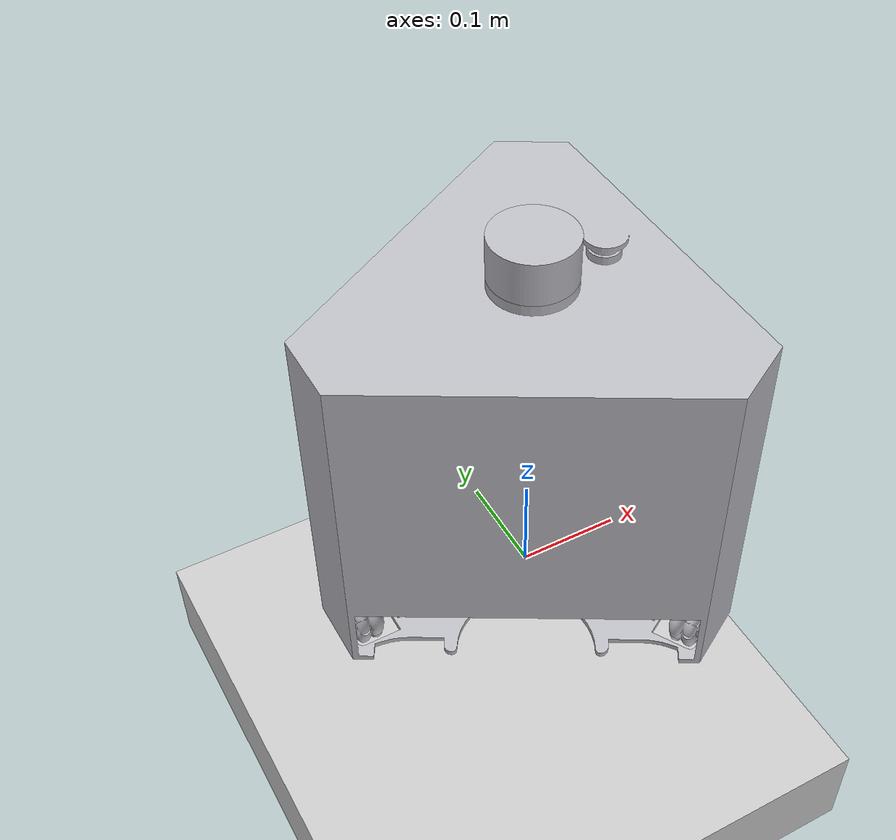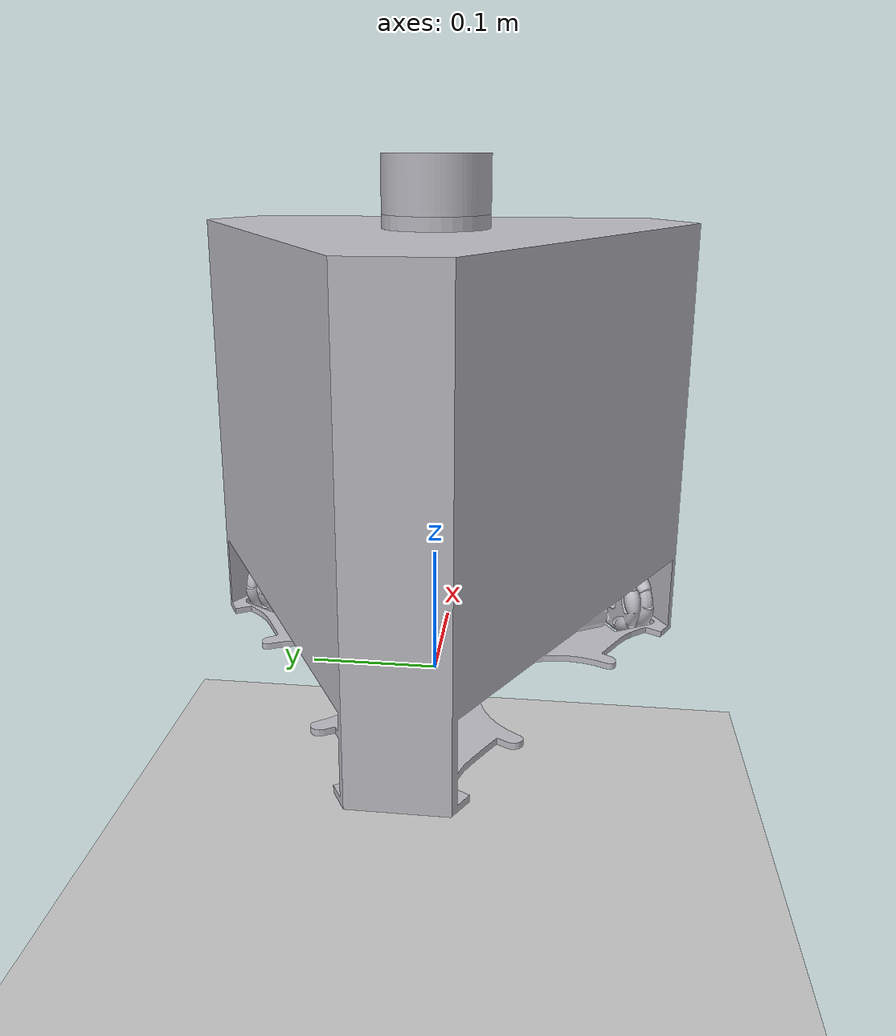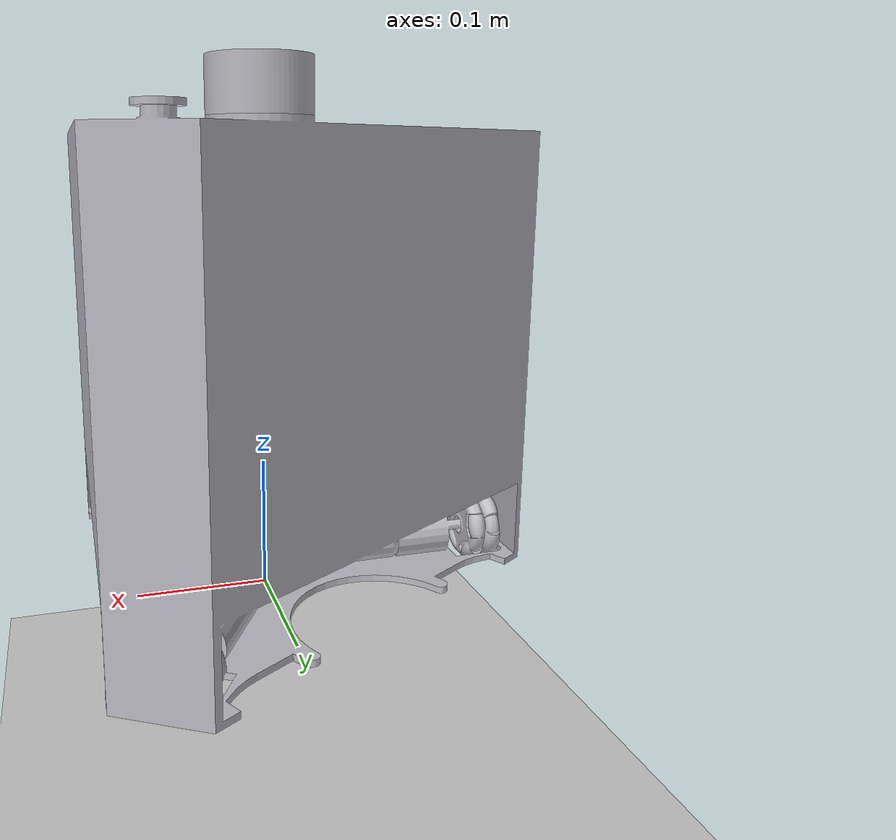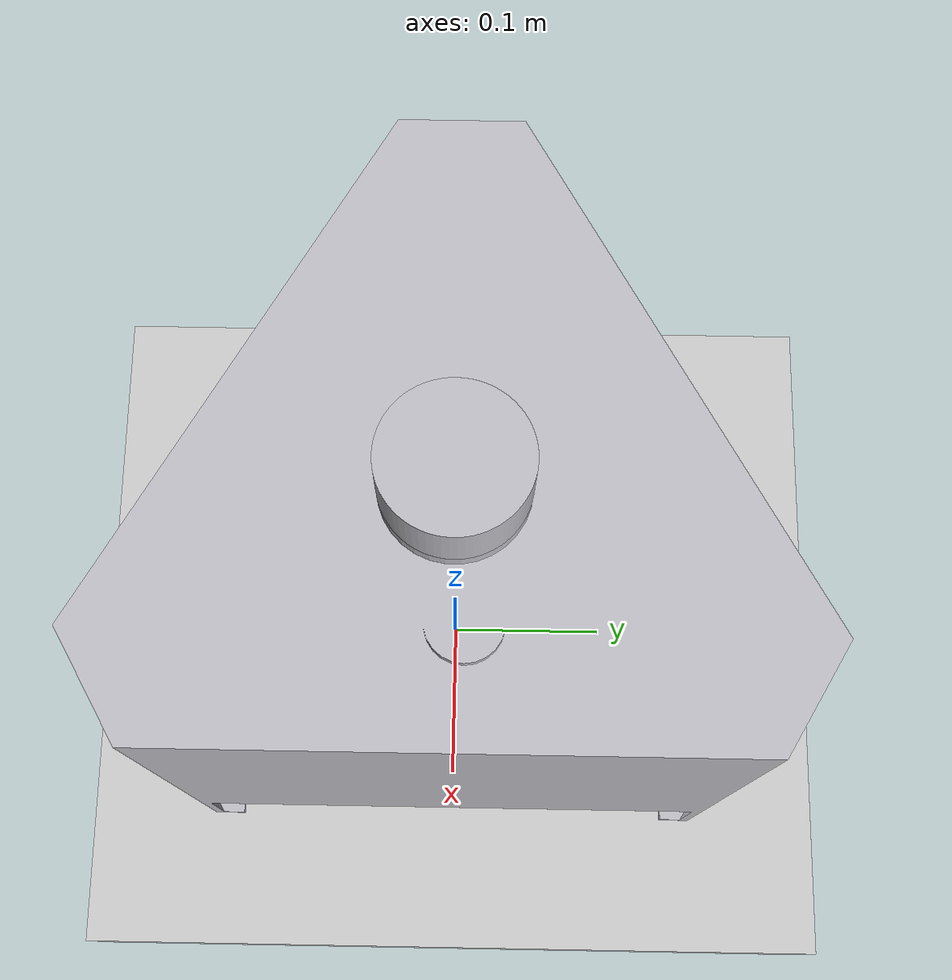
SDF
<?xml version="1.0" ?>

<sdf version='1.6'>
  <world name="farm_on_mars">
    <physics name="1ms" type="ignored">
      <max_step_size>0.001</max_step_size>
      <real_time_factor>1.0</real_time_factor>
    </physics>

    <model name="ground_plane">
      <static>true</static>
      <link name="link">
        <pose>0 0 -0.2 0 0 0</pose>
        <collision name="collision">
          <geometry>
            <box>
              <size>2 2 0.1</size>
            </box>
          </geometry>
        </collision>
        <visual name="visual">
          <geometry>
            <box>
              <size>2 2 0.1</size>
            </box>
          </geometry>
          <material>
            <ambient>0.8 0.8 0.8 1</ambient>
            <diffuse>0.8 0.8 0.8 1</diffuse>
            <specular>0.8 0.8 0.8 1</specular>
          </material>
        </visual>
      </link>
    </model>

    <model name="energybot1">
      <link name="base_link">
        <inertial>
          <pose>4.947386574344437e-05 3.69727636149967e-06 0.2063206729832077 0 0 0</pose>
          <mass>184.42831079049344</mass>
          <inertia>
            <ixx>2.663181</ixx>
            <ixy>4.9e-05</ixy>
            <ixz>-0.001242</ixz>
            <iyy>2.663734</iyy>
            <iyz>-0.000104</iyz>
            <izz>2.718376</izz>
          </inertia>
        </inertial>
        <visual name="base_link_visual1">
          <pose>0 0 0 0 0 0</pose>
          <geometry>
            <mesh>
              <uri>model://home/sees/CommLineProg/work/catkin2_ws/src/tribot2023urdf2/meshes/base_link.stl</uri>
              <scale>0.001 0.001 0.001</scale>
            </mesh>
          </geometry>
          <material>
            <script>
              <name>Gazebo/Silver</name>
              <uri>file://media/materials/scripts/gazebo.material</uri>
            </script>
          </material>
        </visual>
        <collision name="base_link_collision1">
          <pose>0 0 0 0 0 0</pose>
          <geometry>
            <mesh>
              <uri>model://home/sees/CommLineProg/work/catkin2_ws/src/tribot2023urdf2/meshes/base_link.stl</uri>
              <scale>0.001 0.001 0.001</scale>
            </mesh>
          </geometry>
          <surface>
            <contact>
              <ode/>
            </contact>
            <friction>
              <ode>
                <mu>0.2</mu>
                <mu2>0.2</mu2>
              </ode>
            </friction>
          </surface>
        </collision>
        <self_collide>true</self_collide>
        <gravity>true</gravity>
      </link>
      <link name="wheel_1_1">
        <inertial>
          <pose>-5.672276000806553e-05 -1.0146853210952665e-08 5.150149574167928e-09 0 0 0</pose>
          <mass>0.3928101364288651</mass>
          <inertia>
            <ixx>0.000159</ixx>
            <ixy>-0.0</ixy>
            <ixz>-0.0</ixz>
            <iyy>0.000101</iyy>
            <iyz>-0.0</iyz>
            <izz>0.000101</izz>
          </inertia>
        </inertial>
        <visual name="wheel_1_1_visual1">
          <pose>0 0 0 0 0 0</pose>
          <geometry>
            <mesh>
              <uri>model://home/sees/CommLineProg/work/catkin2_ws/src/tribot2023urdf2/meshes/wheel_1_1.stl</uri>
              <scale>0.001 0.001 0.001</scale>
            </mesh>
          </geometry>
          <material>
            <script>
              <name>Gazebo/Silver</name>
              <uri>file://media/materials/scripts/gazebo.material</uri>
            </script>
          </material>
        </visual>
        <collision name="wheel_1_1_collision1">
          <pose>0 0 0 0 0 0</pose>
          <geometry>
            <mesh>
              <uri>model://home/sees/CommLineProg/work/catkin2_ws/src/tribot2023urdf2/meshes/wheel_1_1.stl</uri>
              <scale>0.001 0.001 0.001</scale>
            </mesh>
          </geometry>
          <surface>
            <contact>
              <ode/>
            </contact>
            <friction>
              <ode>
                <mu>0.2</mu>
                <mu2>0.2</mu2>
              </ode>
            </friction>
          </surface>
        </collision>
        <self_collide>true</self_collide>
      </link>
      <link name="wheel_2_1">
        <inertial>
          <pose>2.8338520443177417e-05 -4.9510160979343576e-05 6.468955225658046e-09 0 0 0</pose>
          <mass>0.3928101364288651</mass>
          <inertia>
            <ixx>0.000115</ixx>
            <ixy>-2.5e-05</ixy>
            <ixz>-0.0</ixz>
            <iyy>0.000145</iyy>
            <iyz>0.0</iyz>
            <izz>0.000101</izz>
          </inertia>
        </inertial>
        <visual name="wheel_2_1_visual1">
          <pose>0 0 0 0 0 0</pose>
          <geometry>
            <mesh>
              <uri>model://home/sees/CommLineProg/work/catkin2_ws/src/tribot2023urdf2/meshes/wheel_2_1.stl</uri>
              <scale>0.001 0.001 0.001</scale>
            </mesh>
          </geometry>
          <material>
            <script>
              <name>Gazebo/Silver</name>
              <uri>file://media/materials/scripts/gazebo.material</uri>
            </script>
          </material>
        </visual>
        <collision name="wheel_2_1_collision1">
          <pose>0 0 0 0 0 0</pose>
          <geometry>
            <mesh>
              <uri>model://home/sees/CommLineProg/work/catkin2_ws/src/tribot2023urdf2/meshes/wheel_2_1.stl</uri>
              <scale>0.001 0.001 0.001</scale>
            </mesh>
          </geometry>
          <surface>
            <contact>
              <ode/>
            </contact>
            <friction>
              <ode>
                <mu>0.2</mu>
                <mu2>0.2</mu2>
              </ode>
            </friction>
          </surface>
        </collision>
        <self_collide>true</self_collide>
      </link>
      <link name="wheel_3_1">
        <inertial>
          <pose>2.8375160984195347e-05 4.951714439502264e-05 -2.434836562231757e-08 0 0 0</pose>
          <mass>0.3928101364288651</mass>
          <inertia>
            <ixx>0.000115</ixx>
            <ixy>-2.5e-05</ixy>
            <ixz>0.0</ixz>
            <iyy>0.000145</iyy>
            <iyz>-0.0</iyz>
            <izz>0.000101</izz>
          </inertia>
        </inertial>
        <visual name="wheel_3_1_visual1">
          <pose>0 0 0 0 0 0</pose>
          <geometry>
            <mesh>
              <uri>model://home/sees/CommLineProg/work/catkin2_ws/src/tribot2023urdf2/meshes/wheel_3_1.stl</uri>
              <scale>0.001 0.001 0.001</scale>
            </mesh>
          </geometry>
          <material>
            <script>
              <name>Gazebo/Silver</name>
              <uri>file://media/materials/scripts/gazebo.material</uri>
            </script>
          </material>
        </visual>
        <collision name="wheel_3_1_collision1">
          <pose>0 0 0 0 0 0</pose>
          <geometry>
            <mesh>
              <uri>model://home/sees/CommLineProg/work/catkin2_ws/src/tribot2023urdf2/meshes/wheel_3_1.stl</uri>
              <scale>0.001 0.001 0.001</scale>
            </mesh>
          </geometry>
          <surface>
            <contact>
              <ode/>
            </contact>
            <friction>
              <ode>
                <mu>0.2</mu>
                <mu2>0.2</mu2>
              </ode>
            </friction>
          </surface>
        </collision>
        <self_collide>true</self_collide>
      </link>
      <link name="lidar_2_1">
        <inertial>
          <pose>-2.320379200916381e-16 6.381042802520046e-17 0.020507000000000053 0 0 0</pose>
          <mass>1.538441088874157</mass>
          <inertia>
            <ixx>0.000801</ixx>
            <ixy>-0.0</ixy>
            <ixz>-0.0</ixz>
            <iyy>0.000801</iyy>
            <iyz>0.0</iyz>
            <izz>0.00117</izz>
          </inertia>
        </inertial>
        <visual name="lidar_2_1_visual1">
          <pose>0 0 0 0 0 0</pose>
          <geometry>
            <mesh>
              <uri>model://home/sees/CommLineProg/work/catkin2_ws/src/tribot2023urdf2/meshes/lidar_2_1.stl</uri>
              <scale>0.001 0.001 0.001</scale>
            </mesh>
          </geometry>
          <material>
            <script>
              <name>Gazebo/Silver</name>
              <uri>file://media/materials/scripts/gazebo.material</uri>
            </script>
          </material>
        </visual>
        <collision name="lidar_2_1_collision1">
          <pose>0 0 0 0 0 0</pose>
          <geometry>
            <mesh>
              <uri>model://home/sees/CommLineProg/work/catkin2_ws/src/tribot2023urdf2/meshes/lidar_2_1.stl</uri>
              <scale>0.001 0.001 0.001</scale>
            </mesh>
          </geometry>
          <surface>
            <contact>
              <ode/>
            </contact>
            <friction>
              <ode>
                <mu>0.2</mu>
                <mu2>0.2</mu2>
              </ode>
            </friction>
          </surface>
        </collision>
        <self_collide>true</self_collide>
      </link>

      <joint name="Rev1" type="revolute">
        <pose>-0.17874 0.0 0.029 0 0 0</pose>
        <parent>base_link</parent>
        <child>wheel_1_1</child>
        <axis>
          <xyz>-1.0 0.0 -0.0</xyz>
        </axis>
      </joint>
      <joint name="Rev2" type="revolute">
        <pose>0.08937 -0.154793 0.029 0 0 0</pose>
        <parent>base_link</parent>
        <child>wheel_2_1</child>
        <axis>
          <xyz>0.5 -0.866025 0.0</xyz>
        </axis>
      </joint>
      <joint name="Rev3" type="revolute">
        <pose>0.08937 0.154793 0.029 0 0 0</pose>
        <parent>base_link</parent>
        <child>wheel_3_1</child>
        <axis>
          <xyz>0.5 0.866025 0.0</xyz>
        </axis>
      </joint>
      <joint name="Rigid1" type="fixed">
        <pose>0.0 0.0 0.358 0 0 0</pose>
        <parent>base_link</parent>
        <child>lidar_2_1</child>
      </joint>

      <transmission name="Rev1_tran">
        <type>transmission_interface/SimpleTransmission</type>
        <joint name="Rev1">
          <hardwareInterface>hardware_interface/EffortJointInterface</hardwareInterface>
        </joint>
        <actuator name="Rev1_actr">
          <hardwareInterface>hardware_interface/EffortJointInterface</hardwareInterface>
          <mechanicalReduction>1</mechanicalReduction>
        </actuator>
      </transmission>

      <transmission name="Rev2_tran">
        <type>transmission_interface/SimpleTransmission</type>
        <joint name="Rev2">
          <hardwareInterface>hardware_interface/EffortJointInterface</hardwareInterface>
        </joint>
        <actuator name="Rev2_actr">
          <hardwareInterface>hardware_interface/EffortJointInterface</hardwareInterface>
          <mechanicalReduction>1</mechanicalReduction>
        </actuator>
      </transmission>

      <transmission name="Rev3_tran">
        <type>transmission_interface/SimpleTransmission</type>
        <joint name="Rev3">
          <hardwareInterface>hardware_interface/EffortJointInterface</hardwareInterface>
        </joint>
        <actuator name="Rev3_actr">
          <hardwareInterface>hardware_interface/EffortJointInterface</hardwareInterface>
          <mechanicalReduction>1</mechanicalReduction>
        </actuator>
      </transmission>
    </model>
  </world>
</sdf>
